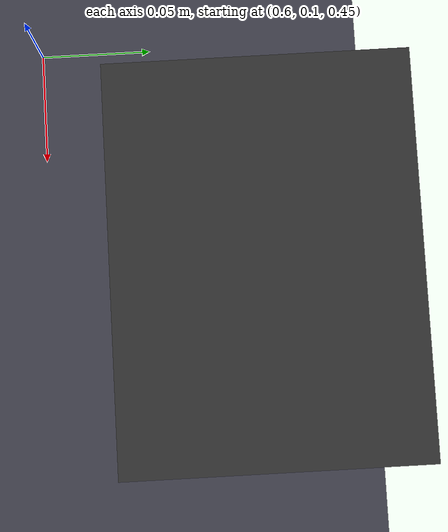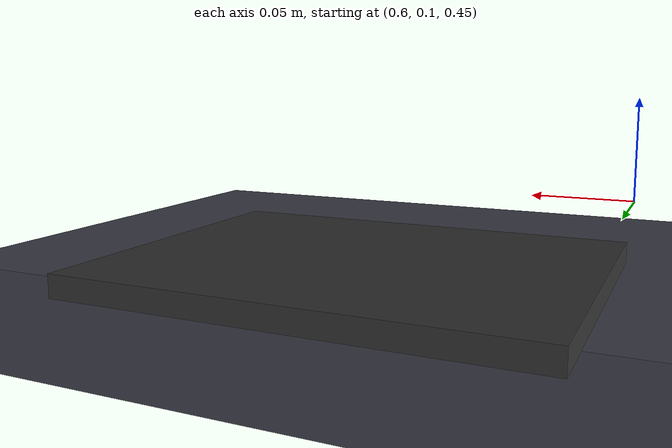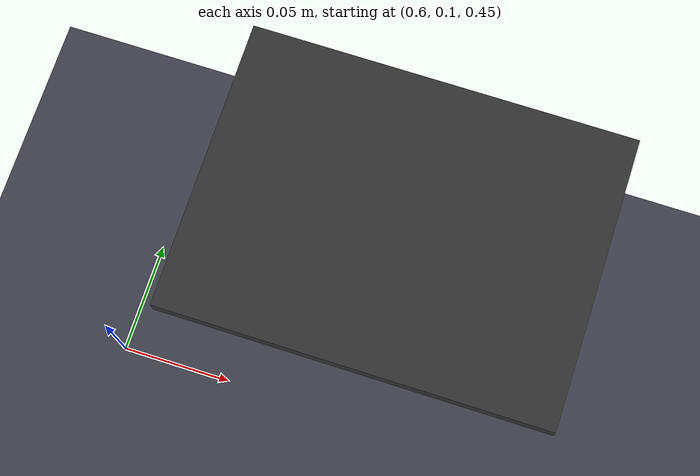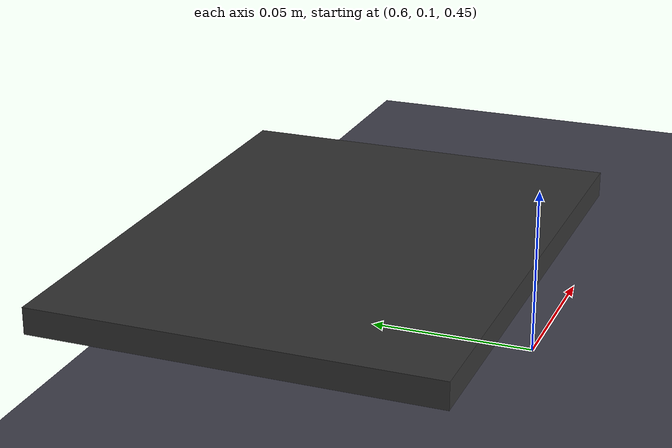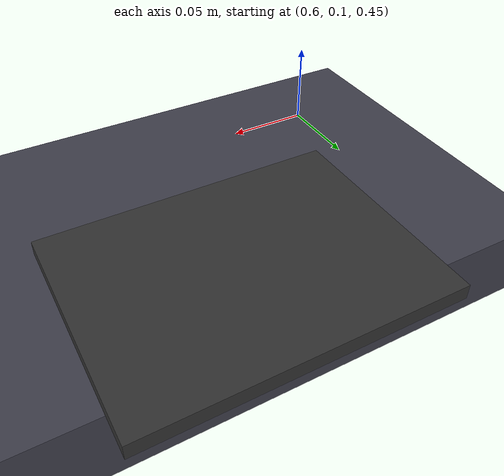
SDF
<?xml version="1.0" ?>
<sdf version="1.7">
  <!--
    半導体ライン風ワークベンチ（テーブル + トレー）
    UR5e のベース(原点)から見て前方 x=0.5 付近に作業面を配置。
    動的な部品は cube_red/blue/green.sdf で別途 spawn する。
  -->
  <!--
    テーブルはロボットの作業空間前方に配置し（中心 x=0.6）、ロボット基部
    (world 原点) と物理的に重ならないよう前出し。cube は dynamic に
    戻したので table / tray それぞれの collision を復活させ、cube が
    spawn 後に物理的に着地・トレー上で停止できるようにする。
  -->
  <model name="scene_workbench">
    <static>true</static>
    <link name="table">
      <pose>0.6 0 0.4 0 0 0</pose>
      <visual name="surface_visual">
        <geometry><box><size>0.6 0.5 0.05</size></box></geometry>
        <material>
          <ambient>0.2 0.2 0.25 1</ambient>
          <diffuse>0.25 0.25 0.3 1</diffuse>
        </material>
      </visual>
      <collision name="surface_collision">
        <geometry><box><size>0.6 0.5 0.05</size></box></geometry>
      </collision>
    </link>
    <link name="tray">
      <pose>0.70 0.20 0.43 0 0 0</pose>
      <visual name="tray_visual">
        <geometry><box><size>0.2 0.15 0.01</size></box></geometry>
        <material>
          <ambient>0.15 0.15 0.15 1</ambient>
          <diffuse>0.2 0.2 0.2 1</diffuse>
        </material>
      </visual>
      <collision name="tray_collision">
        <geometry><box><size>0.2 0.15 0.01</size></box></geometry>
      </collision>
    </link>
  </model>
</sdf>
